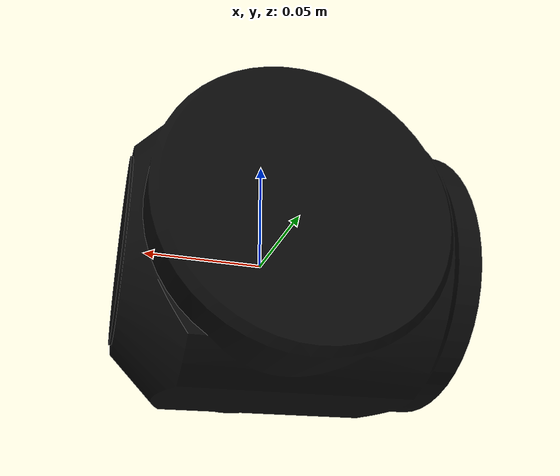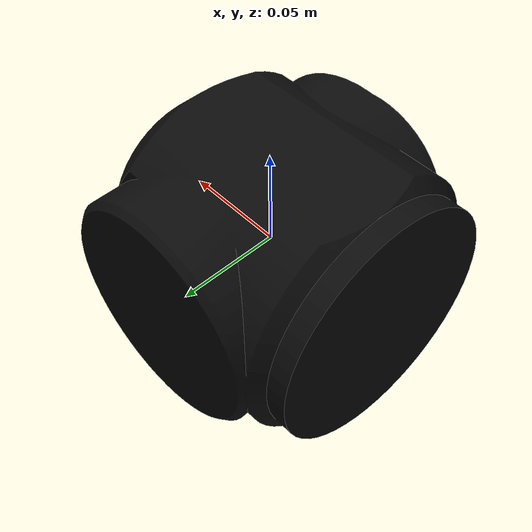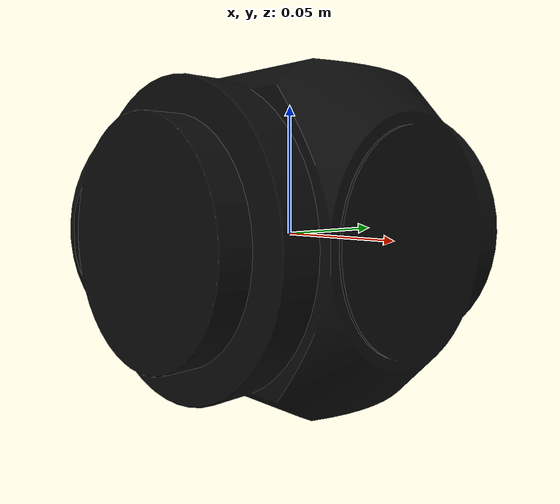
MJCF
<mujoco model="LINK_4">
  <default>
    <default class="visual">
      <geom group="2" type="mesh" contype="0" conaffinity="0"/>
    </default>
    <default class="collision">
      <geom group="3" type="mesh"/>
    </default>
  </default>
  <asset>
    <material name="10,10,10" specular="0.039216" shininess="1.0" rgba="0.039216 0.039216 0.039216 1.000000"/>
    <mesh file="LINK_4.obj"/>
    <mesh file="LINK_4_collision_0.obj"/>
    <mesh file="LINK_4_collision_1.obj"/>
    <mesh file="LINK_4_collision_2.obj"/>
    <mesh file="LINK_4_collision_3.obj"/>
    <mesh file="LINK_4_collision_4.obj"/>
    <mesh file="LINK_4_collision_5.obj"/>
    <mesh file="LINK_4_collision_6.obj"/>
    <mesh file="LINK_4_collision_7.obj"/>
    <mesh file="LINK_4_collision_8.obj"/>
    <mesh file="LINK_4_collision_9.obj"/>
    <mesh file="LINK_4_collision_10.obj"/>
    <mesh file="LINK_4_collision_11.obj"/>
    <mesh file="LINK_4_collision_12.obj"/>
    <mesh file="LINK_4_collision_13.obj"/>
    <mesh file="LINK_4_collision_14.obj"/>
    <mesh file="LINK_4_collision_15.obj"/>
    <mesh file="LINK_4_collision_16.obj"/>
    <mesh file="LINK_4_collision_17.obj"/>
  </asset>
  <worldbody>
    <body name="LINK_4">
      <geom material="10,10,10" mesh="LINK_4" class="visual"/>
      <geom mesh="LINK_4_collision_0" rgba="0.5700440592879247 0.23227281560614943 0.18401756793997814 1" class="collision"/>
      <geom mesh="LINK_4_collision_1" rgba="0.38415754152761006 0.41699647672996565 0.11560373273673785 1" class="collision"/>
      <geom mesh="LINK_4_collision_2" rgba="0.8049744670257315 0.6889055483397964 0.10278892838911258 1" class="collision"/>
      <geom mesh="LINK_4_collision_3" rgba="0.6370698475384632 0.9350524528814796 0.7722069879504571 1" class="collision"/>
      <geom mesh="LINK_4_collision_4" rgba="0.9566793370245695 0.2228145858533469 0.5914910911563199 1" class="collision"/>
      <geom mesh="LINK_4_collision_5" rgba="0.706035602089316 0.41000418129689553 0.30548597045881354 1" class="collision"/>
      <geom mesh="LINK_4_collision_6" rgba="0.32129755611944244 0.2794901555843359 0.38850926804213404 1" class="collision"/>
      <geom mesh="LINK_4_collision_7" rgba="0.47423181778200363 0.12353600242090368 0.8846272192870264 1" class="collision"/>
      <geom mesh="LINK_4_collision_8" rgba="0.3021784444387302 0.13843421354683572 0.5087754978615563 1" class="collision"/>
      <geom mesh="LINK_4_collision_9" rgba="0.059065929633765224 0.03852301424454074 0.4292638631487584 1" class="collision"/>
      <geom mesh="LINK_4_collision_10" rgba="0.29049326173439705 0.3635279641499557 0.5249167358441088 1" class="collision"/>
      <geom mesh="LINK_4_collision_11" rgba="0.23454681880612227 0.994336604023588 0.8086707766123641 1" class="collision"/>
      <geom mesh="LINK_4_collision_12" rgba="0.5742945319062052 0.661842529498812 0.7559380562210938 1" class="collision"/>
      <geom mesh="LINK_4_collision_13" rgba="0.15560344943264748 0.032045918624061476 0.805468407055723 1" class="collision"/>
      <geom mesh="LINK_4_collision_14" rgba="0.32560107816306927 0.5346426074351186 0.35119234349766515 1" class="collision"/>
      <geom mesh="LINK_4_collision_15" rgba="0.891099276969463 0.6808199396613235 0.970359321581187 1" class="collision"/>
      <geom mesh="LINK_4_collision_16" rgba="0.15632292932983427 0.4257623159479256 0.5305663170528113 1" class="collision"/>
      <geom mesh="LINK_4_collision_17" rgba="0.5469180189436573 0.8772068359722345 0.22772253820435628 1" class="collision"/>
    </body>
  </worldbody>
</mujoco>
